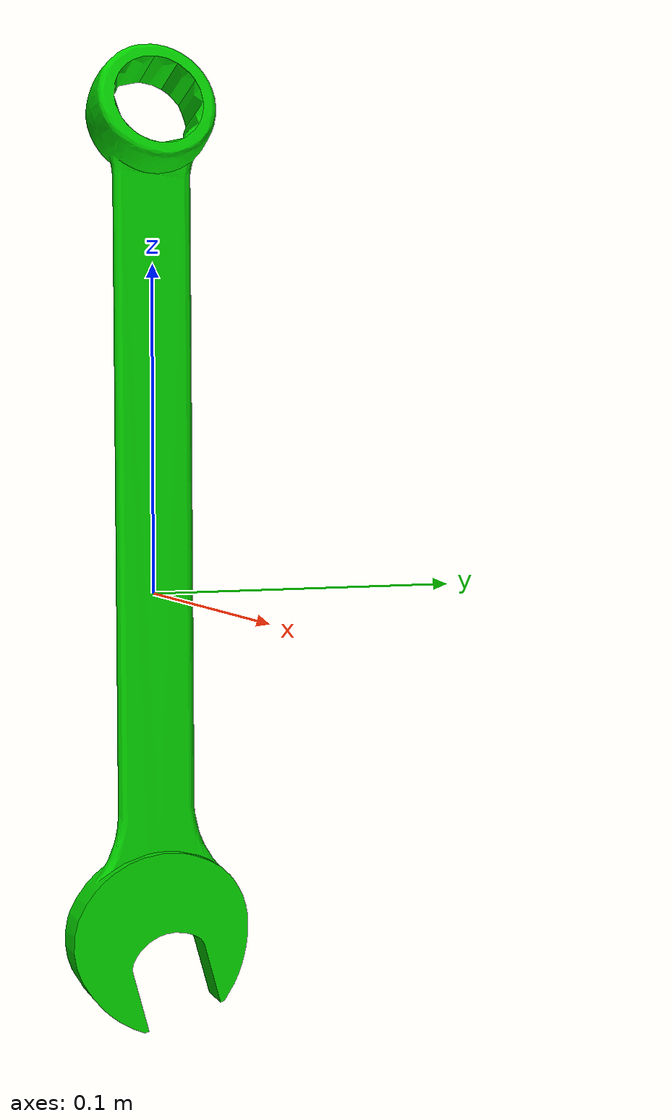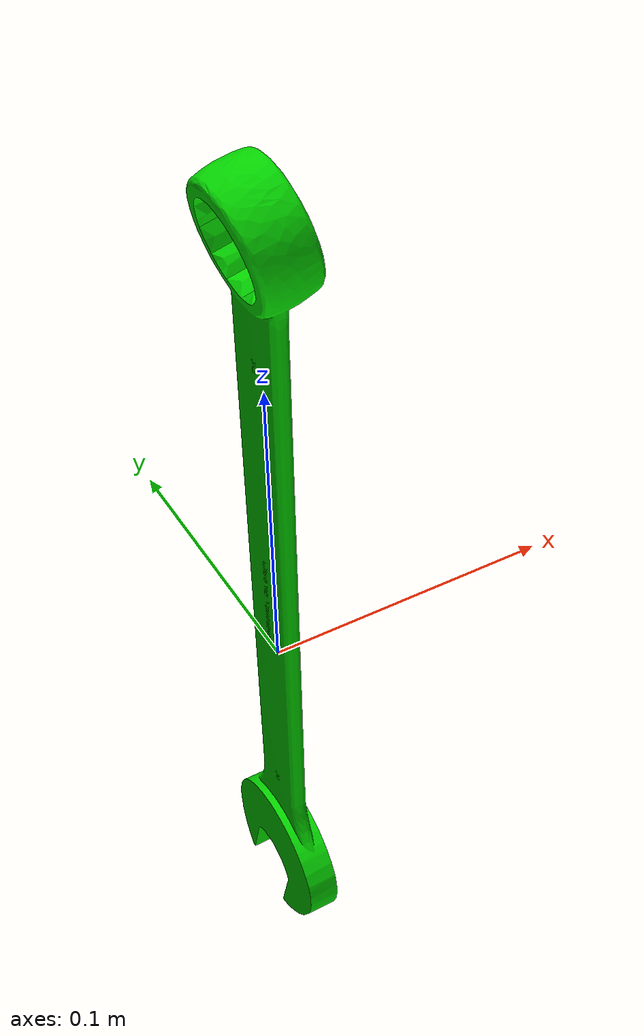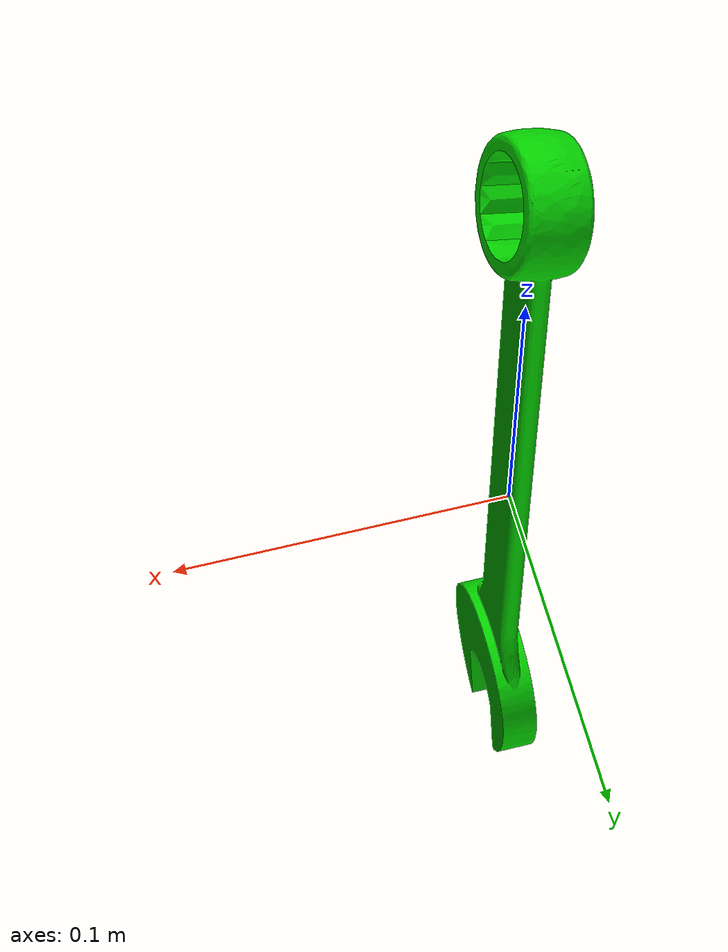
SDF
<?xml version="1.0"?>
<sdf version="1.7">
  <model name="combination_wrench_24mm_bright">
    <pose>0 0 0 0 0 0</pose>
    <static>false</static>
    <link name="link">
      <!-- link frame = tool CoM; Z = long axis (+ toward tool end), X = forward, Y = Z x X -->
      <inertial>
        <pose>0 0 0 0 0 0</pose>
        <mass>0.437549</mass>
        <inertia>
          <ixx>4.159519e-03</ixx>
          <ixy>9.708365e-20</ixy>
          <ixz>-1.898789e-21</ixz>
          <iyy>4.107160e-03</iyy>
          <iyz>-1.942639e-20</iyz>
          <izz>6.099665e-05</izz>
        </inertia>
      </inertial>
      <collision name="collision">
        <geometry>
          <mesh>
            <uri>model://combination_wrench_24mm/meshes/combination_wrench_24mm.dae</uri>
          </mesh>
        </geometry>
      </collision>
      <visual name="visual">
        <geometry>
          <mesh>
            <uri>model://combination_wrench_24mm/meshes/combination_wrench_24mm.dae</uri>
          </mesh>
        </geometry>
        <material>
          <ambient>0.007 0.369 0.000 1.0</ambient>
          <diffuse>0.016 0.820 0.000 1.0</diffuse>
          <specular>0.85 0.85 0.85 1.0</specular>
          <emissive>0 0 0 1.0</emissive>
        </material>
      </visual>
    </link>
  </model>
</sdf>
